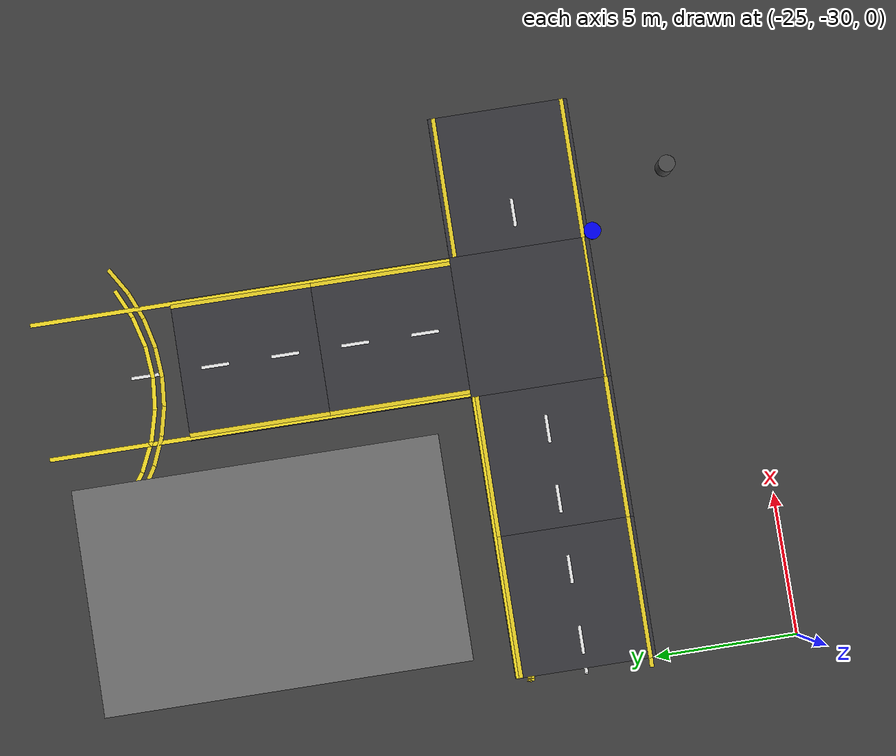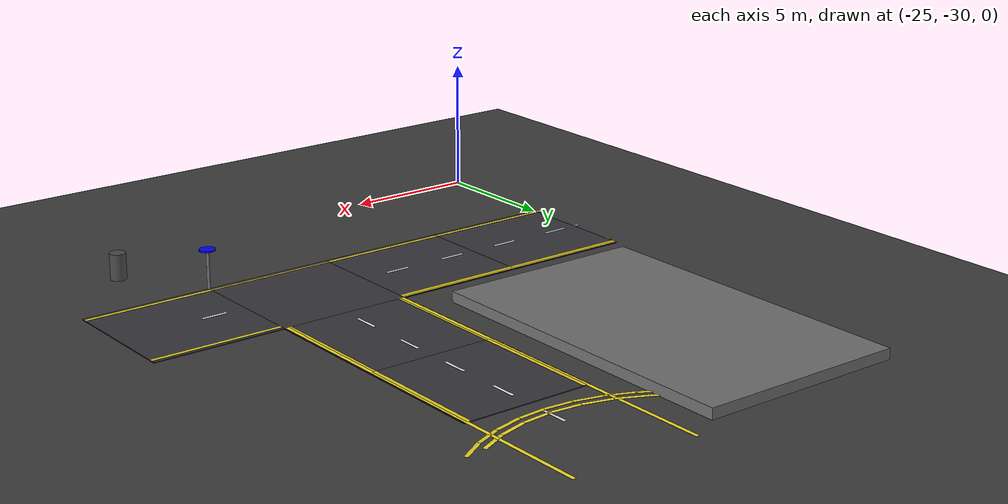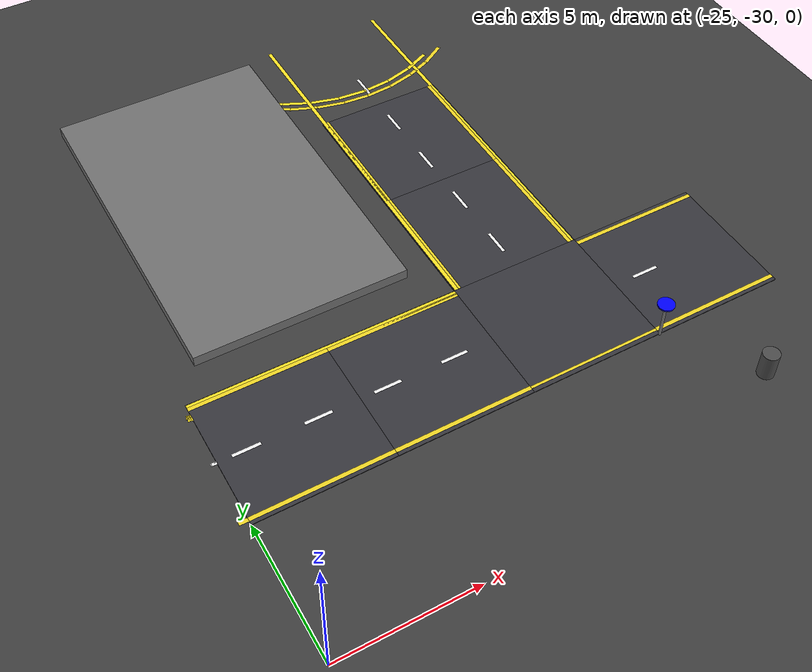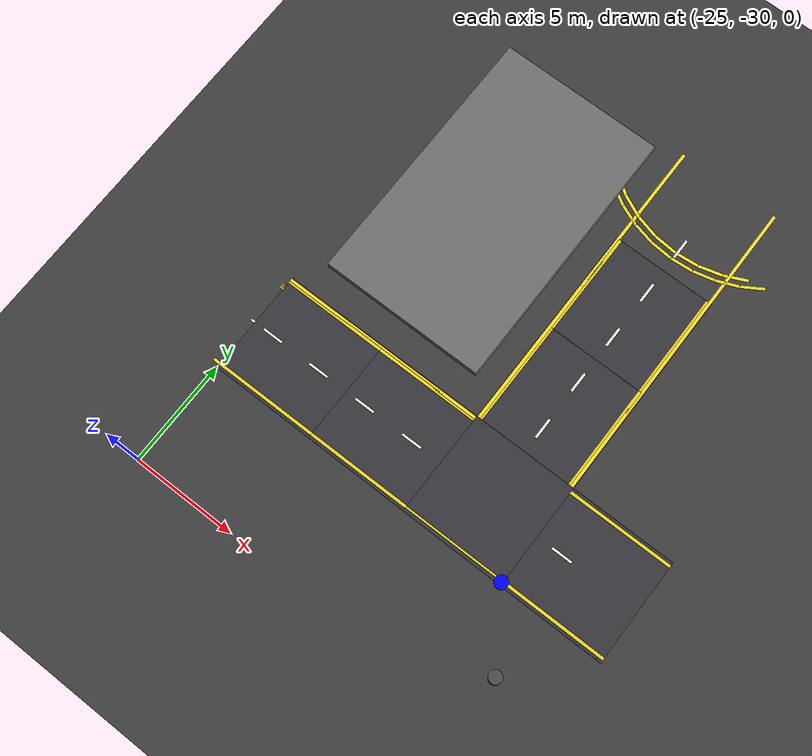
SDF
<sdf version="1.7">
 <world name="compact_city">
  <model name="ground_plane">
   <static>1</static>
   <pose>0 0 0.01 0 -0 0</pose>
   <link name="link">
    <collision name="collision">
     <geometry><plane><normal>0 0 1</normal><size>200 200</size></plane></geometry>
    </collision>
    <visual name="visual">
     <geometry><plane><normal>0 0 1</normal><size>200 200</size></plane></geometry>
     <material>
      <ambient>0.2 0.2 0.2 1</ambient>
      <diffuse>0.25 0.25 0.25 1</diffuse>
      <specular>0.1 0.1 0.1 1</specular>
     </material>
    </visual>
   </link>
  </model>
  <model name="road_tile_61">
   <static>1</static>
   <pose>-12.5 -12.5 0.015 0 -0 1.5708</pose>
   <link name="link">
    <collision name="collision"><geometry><box><size>5 5 0.03</size></box></geometry></collision>
    <visual name="visual">
     <geometry><box><size>5 5 0.03</size></box></geometry>
     <material>
      <ambient>0.18 0.18 0.2 1</ambient>
      <diffuse>0.22 0.22 0.24 1</diffuse>
      <specular>0.1 0.1 0.1 1</specular>
     </material>
    </visual>
   </link>
  </model>
  <model name="road_tile_65">
   <static>1</static>
   <pose>-12.5 -17.5 0.015 0 -0 1.5708</pose>
   <link name="link">
    <collision name="collision"><geometry><box><size>5 5 0.03</size></box></geometry></collision>
    <visual name="visual">
     <geometry><box><size>5 5 0.03</size></box></geometry>
     <material>
      <ambient>0.18 0.18 0.2 1</ambient>
      <diffuse>0.22 0.22 0.24 1</diffuse>
      <specular>0.1 0.1 0.1 1</specular>
     </material>
    </visual>
   </link>
  </model>
  <model name="road_tile_69">
   <static>1</static>
   <pose>-22.5 -22.5 0.015 0 -0 0</pose>
   <link name="link">
    <collision name="collision"><geometry><box><size>5 5 0.03</size></box></geometry></collision>
    <visual name="visual">
     <geometry><box><size>5 5 0.03</size></box></geometry>
     <material>
      <ambient>0.18 0.18 0.2 1</ambient>
      <diffuse>0.22 0.22 0.24 1</diffuse>
      <specular>0.1 0.1 0.1 1</specular>
     </material>
    </visual>
   </link>
  </model>
  <model name="road_tile_70">
   <static>1</static>
   <pose>-17.5 -22.5 0.015 0 -0 0</pose>
   <link name="link">
    <collision name="collision"><geometry><box><size>5 5 0.03</size></box></geometry></collision>
    <visual name="visual">
     <geometry><box><size>5 5 0.03</size></box></geometry>
     <material>
      <ambient>0.18 0.18 0.2 1</ambient>
      <diffuse>0.22 0.22 0.24 1</diffuse>
      <specular>0.1 0.1 0.1 1</specular>
     </material>
    </visual>
   </link>
  </model>
  <model name="road_tile_71">
   <static>1</static>
   <pose>-12.5 -22.5 0.015 0 -0 0</pose>
   <link name="link">
    <collision name="collision"><geometry><box><size>5 5 0.03</size></box></geometry></collision>
    <visual name="visual">
     <geometry><box><size>5 5 0.03</size></box></geometry>
     <material>
      <ambient>0.18 0.18 0.2 1</ambient>
      <diffuse>0.22 0.22 0.24 1</diffuse>
      <specular>0.1 0.1 0.1 1</specular>
     </material>
    </visual>
   </link>
  </model>
  <model name="road_tile_72">
   <static>1</static>
   <pose>-7.5 -22.5 0.015 0 -0 0</pose>
   <link name="link">
    <collision name="collision"><geometry><box><size>5 5 0.03</size></box></geometry></collision>
    <visual name="visual">
     <geometry><box><size>5 5 0.03</size></box></geometry>
     <material>
      <ambient>0.18 0.18 0.2 1</ambient>
      <diffuse>0.22 0.22 0.24 1</diffuse>
      <specular>0.1 0.1 0.1 1</specular>
     </material>
    </visual>
   </link>
  </model>
  <model name="sidewalk_area_bot_left">
   <static>1</static>
   <pose>-20.1013 -12.1455 0.2 0 -0 0</pose>
   <link name="link">
    <collision name="collision"><geometry><box><size>8 13 0.4</size></box></geometry></collision>
    <visual name="visual">
     <geometry><box><size>8 13 0.4</size></box></geometry>
     <material>
      <ambient>0.4 0.4 0.4 1</ambient>
      <diffuse>0.45 0.45 0.45 1</diffuse>
      <specular>0.2 0.2 0.2 1</specular>
     </material>
    </visual>
   </link>
  </model>
  <model name="el_147">
   <static>1</static>
   <pose>-22.5 -24.8 0.038 0 -0 0</pose>
   <link name="link">
    <visual name="v">
     <geometry><box><size>5 0.15 0.002</size></box></geometry>
     <material><ambient>0.9 0.8 0.1 1</ambient><diffuse>0.95 0.85 0.15 1</diffuse></material>
    </visual>
   </link>
  </model>
  <model name="el_148">
   <static>1</static>
   <pose>-22.5 -20.2 0.038 0 -0 0</pose>
   <link name="link">
    <visual name="v">
     <geometry><box><size>5 0.15 0.002</size></box></geometry>
     <material><ambient>0.9 0.8 0.1 1</ambient><diffuse>0.95 0.85 0.15 1</diffuse></material>
    </visual>
   </link>
  </model>
  <model name="el_155">
   <static>1</static>
   <pose>-17.5 -24.8 0.038 0 -0 0</pose>
   <link name="link">
    <visual name="v">
     <geometry><box><size>5 0.15 0.002</size></box></geometry>
     <material><ambient>0.9 0.8 0.1 1</ambient><diffuse>0.95 0.85 0.15 1</diffuse></material>
    </visual>
   </link>
  </model>
  <model name="el_156">
   <static>1</static>
   <pose>-17.5 -20.2 0.038 0 -0 0</pose>
   <link name="link">
    <visual name="v">
     <geometry><box><size>5 0.15 0.002</size></box></geometry>
     <material><ambient>0.9 0.8 0.1 1</ambient><diffuse>0.95 0.85 0.15 1</diffuse></material>
    </visual>
   </link>
  </model>
  <model name="el_163">
   <static>1</static>
   <pose>-14.8 -17.5 0.038 0 -0 1.5708</pose>
   <link name="link">
    <visual name="v">
     <geometry><box><size>5 0.15 0.002</size></box></geometry>
     <material><ambient>0.9 0.8 0.1 1</ambient><diffuse>0.95 0.85 0.15 1</diffuse></material>
    </visual>
   </link>
  </model>
  <model name="el_164">
   <static>1</static>
   <pose>-10.2 -17.5 0.038 0 -0 1.5708</pose>
   <link name="link">
    <visual name="v">
     <geometry><box><size>5 0.15 0.002</size></box></geometry>
     <material><ambient>0.9 0.8 0.1 1</ambient><diffuse>0.95 0.85 0.15 1</diffuse></material>
    </visual>
   </link>
  </model>
  <model name="el_165">
   <static>1</static>
   <pose>-14.8 -12.5 0.038 0 -0 1.5708</pose>
   <link name="link">
    <visual name="v">
     <geometry><box><size>5 0.15 0.002</size></box></geometry>
     <material><ambient>0.9 0.8 0.1 1</ambient><diffuse>0.95 0.85 0.15 1</diffuse></material>
    </visual>
   </link>
  </model>
  <model name="el_166">
   <static>1</static>
   <pose>-10.2 -12.5 0.038 0 -0 1.5708</pose>
   <link name="link">
    <visual name="v">
     <geometry><box><size>5 0.15 0.002</size></box></geometry>
     <material><ambient>0.9 0.8 0.1 1</ambient><diffuse>0.95 0.85 0.15 1</diffuse></material>
    </visual>
   </link>
  </model>
  <model name="el_179">
   <static>1</static>
   <pose>-7.5 -24.8 0.038 0 -0 0</pose>
   <link name="link">
    <visual name="v">
     <geometry><box><size>5 0.15 0.002</size></box></geometry>
     <material><ambient>0.9 0.8 0.1 1</ambient><diffuse>0.95 0.85 0.15 1</diffuse></material>
    </visual>
   </link>
  </model>
  <model name="el_180">
   <static>1</static>
   <pose>-7.5 -20.2 0.038 0 -0 0</pose>
   <link name="link">
    <visual name="v">
     <geometry><box><size>5 0.15 0.002</size></box></geometry>
     <material><ambient>0.9 0.8 0.1 1</ambient><diffuse>0.95 0.85 0.15 1</diffuse></material>
    </visual>
   </link>
  </model>
  <model name="ld_17">
   <static>1</static>
   <pose>-12.5000 -18.7500 0.038 0 -0 1.5708</pose>
   <link name="link">
    <visual name="v">
     <geometry><box><size>1 0.12 0.002</size></box></geometry>
     <material><ambient>1 1 1 1</ambient><diffuse>0.95 0.95 0.95 1</diffuse></material>
    </visual>
   </link>
  </model>
  <model name="ld_18">
   <static>1</static>
   <pose>-12.5000 -16.2500 0.038 0 -0 1.5708</pose>
   <link name="link">
    <visual name="v">
     <geometry><box><size>1 0.12 0.002</size></box></geometry>
     <material><ambient>1 1 1 1</ambient><diffuse>0.95 0.95 0.95 1</diffuse></material>
    </visual>
   </link>
  </model>
  <model name="ld_19">
   <static>1</static>
   <pose>-12.5000 -13.7500 0.038 0 -0 1.5708</pose>
   <link name="link">
    <visual name="v">
     <geometry><box><size>1 0.12 0.002</size></box></geometry>
     <material><ambient>1 1 1 1</ambient><diffuse>0.95 0.95 0.95 1</diffuse></material>
    </visual>
   </link>
  </model>
  <model name="ld_20">
   <static>1</static>
   <pose>-12.5000 -11.2500 0.038 0 -0 1.5708</pose>
   <link name="link">
    <visual name="v">
     <geometry><box><size>1 0.12 0.002</size></box></geometry>
     <material><ambient>1 1 1 1</ambient><diffuse>0.95 0.95 0.95 1</diffuse></material>
    </visual>
   </link>
  </model>
  <model name="ld_21">
   <static>1</static>
   <pose>-12.5000 -8.7500 0.038 0 -0 1.5708</pose>
   <link name="link">
    <visual name="v">
     <geometry><box><size>1 0.12 0.002</size></box></geometry>
     <material><ambient>1 1 1 1</ambient><diffuse>0.95 0.95 0.95 1</diffuse></material>
    </visual>
   </link>
  </model>
  <model name="ld_117">
   <static>1</static>
   <pose>-24.0000 -22.5000 0.038 0 0 0</pose>
   <link name="link">
    <visual name="v">
     <geometry><box><size>1 0.12 0.002</size></box></geometry>
     <material><ambient>1 1 1 1</ambient><diffuse>0.95 0.95 0.95 1</diffuse></material>
    </visual>
   </link>
  </model>
  <model name="ld_118">
   <static>1</static>
   <pose>-21.5000 -22.5000 0.038 0 0 0</pose>
   <link name="link">
    <visual name="v">
     <geometry><box><size>1 0.12 0.002</size></box></geometry>
     <material><ambient>1 1 1 1</ambient><diffuse>0.95 0.95 0.95 1</diffuse></material>
    </visual>
   </link>
  </model>
  <model name="ld_119">
   <static>1</static>
   <pose>-19.0000 -22.5000 0.038 0 0 0</pose>
   <link name="link">
    <visual name="v">
     <geometry><box><size>1 0.12 0.002</size></box></geometry>
     <material><ambient>1 1 1 1</ambient><diffuse>0.95 0.95 0.95 1</diffuse></material>
    </visual>
   </link>
  </model>
  <model name="ld_120">
   <static>1</static>
   <pose>-16.5000 -22.5000 0.038 0 0 0</pose>
   <link name="link">
    <visual name="v">
     <geometry><box><size>1 0.12 0.002</size></box></geometry>
     <material><ambient>1 1 1 1</ambient><diffuse>0.95 0.95 0.95 1</diffuse></material>
    </visual>
   </link>
  </model>
  <model name="ld_121">
   <static>1</static>
   <pose>-8.7500 -22.5000 0.038 0 0 0</pose>
   <link name="link">
    <visual name="v">
     <geometry><box><size>1 0.12 0.002</size></box></geometry>
     <material><ambient>1 1 1 1</ambient><diffuse>0.95 0.95 0.95 1</diffuse></material>
    </visual>
   </link>
  </model>
  <model name="ie_283">
   <static>1</static>
   <pose>-12.5 -24.8 0.038 0 -0 0</pose>
   <link name="link">
    <visual name="v">
     <geometry><box><size>5 0.1 0.002</size></box></geometry>
     <material><ambient>0.9 0.8 0.1 1</ambient><diffuse>0.95 0.85 0.15 1</diffuse></material>
    </visual>
   </link>
  </model>
  <model name="ac_521">
   <static>1</static>
   <pose>-25.0818 -22.4987 0.038 0 0 -0.032685</pose>
   <link name="link">
    <visual name="v">
     <geometry><box><size>0.173411 0.12 0.002</size></box></geometry>
     <material><ambient>1 1 1 1</ambient><diffuse>0.95 0.95 0.95 1</diffuse></material>
    </visual>
   </link>
  </model>
  <model name="ai_541">
   <static>1</static>
   <pose>-25.1451 -20.4785 0.038 0 0 -0.294485</pose>
   <link name="link">
    <visual name="v">
     <geometry><box><size>0.04 0.15 0.002</size></box></geometry>
     <material><ambient>0.9 0.8 0.1 1</ambient><diffuse>0.95 0.85 0.15 1</diffuse></material>
    </visual>
   </link>
  </model>
  <model name="ai_542">
   <static>1</static>
   <pose>-25.1135 -20.4869 0.038 0 0 -0.229085</pose>
   <link name="link">
    <visual name="v">
     <geometry><box><size>0.04 0.15 0.002</size></box></geometry>
     <material><ambient>0.9 0.8 0.1 1</ambient><diffuse>0.95 0.85 0.15 1</diffuse></material>
    </visual>
   </link>
  </model>
  <model name="ai_543">
   <static>1</static>
   <pose>-25.0814 -20.4933 0.038 0 0 -0.163585</pose>
   <link name="link">
    <visual name="v">
     <geometry><box><size>0.04 0.15 0.002</size></box></geometry>
     <material><ambient>0.9 0.8 0.1 1</ambient><diffuse>0.95 0.85 0.15 1</diffuse></material>
    </visual>
   </link>
  </model>
  <model name="ai_544">
   <static>1</static>
   <pose>-25.049 -20.4976 0.038 0 0 -0.098185</pose>
   <link name="link">
    <visual name="v">
     <geometry><box><size>0.04 0.15 0.002</size></box></geometry>
     <material><ambient>0.9 0.8 0.1 1</ambient><diffuse>0.95 0.85 0.15 1</diffuse></material>
    </visual>
   </link>
  </model>
  <model name="ai_545">
   <static>1</static>
   <pose>-25.0164 -20.4997 0.038 0 0 -0.032685</pose>
   <link name="link">
    <visual name="v">
     <geometry><box><size>0.04 0.15 0.002</size></box></geometry>
     <material><ambient>0.9 0.8 0.1 1</ambient><diffuse>0.95 0.85 0.15 1</diffuse></material>
    </visual>
   </link>
  </model>
  <model name="ao_569">
   <static>1</static>
   <pose>-25.1571 -24.7974 0.038 0 0 -0.032685</pose>
   <link name="link">
    <visual name="v">
     <geometry><box><size>0.329808 0.15 0.002</size></box></geometry>
     <material><ambient>0.9 0.8 0.1 1</ambient><diffuse>0.95 0.85 0.15 1</diffuse></material>
    </visual>
   </link>
  </model>
  <model name="ro_700">
   <static>1</static>
   <pose>-16.143 -8.318 0.038 0 0 -0.549785</pose>
   <link name="link">
    <visual name="v">
     <geometry><box><size>1.1204 0.15 0.002</size></box></geometry>
     <material><ambient>0.9 0.8 0.1 1</ambient><diffuse>0.95 0.85 0.15 1</diffuse></material>
    </visual>
   </link>
  </model>
  <model name="ro_701">
   <static>1</static>
   <pose>-15.1922 -8.8024 0.038 0 0 -0.392685</pose>
   <link name="link">
    <visual name="v">
     <geometry><box><size>1.1204 0.15 0.002</size></box></geometry>
     <material><ambient>0.9 0.8 0.1 1</ambient><diffuse>0.95 0.85 0.15 1</diffuse></material>
    </visual>
   </link>
  </model>
  <model name="ro_702">
   <static>1</static>
   <pose>-14.1774 -9.1321 0.038 0 0 -0.235585</pose>
   <link name="link">
    <visual name="v">
     <geometry><box><size>1.1204 0.15 0.002</size></box></geometry>
     <material><ambient>0.9 0.8 0.1 1</ambient><diffuse>0.95 0.85 0.15 1</diffuse></material>
    </visual>
   </link>
  </model>
  <model name="ro_703">
   <static>1</static>
   <pose>-13.1235 -9.299 0.038 0 0 -0.078585</pose>
   <link name="link">
    <visual name="v">
     <geometry><box><size>1.1204 0.15 0.002</size></box></geometry>
     <material><ambient>0.9 0.8 0.1 1</ambient><diffuse>0.95 0.85 0.15 1</diffuse></material>
    </visual>
   </link>
  </model>
  <model name="ro_704">
   <static>1</static>
   <pose>-12.0565 -9.299 0.038 0 -0 0.078515</pose>
   <link name="link">
    <visual name="v">
     <geometry><box><size>1.1204 0.15 0.002</size></box></geometry>
     <material><ambient>0.9 0.8 0.1 1</ambient><diffuse>0.95 0.85 0.15 1</diffuse></material>
    </visual>
   </link>
  </model>
  <model name="ro_705">
   <static>1</static>
   <pose>-11.0026 -9.1321 0.038 0 -0 0.235615</pose>
   <link name="link">
    <visual name="v">
     <geometry><box><size>1.1204 0.15 0.002</size></box></geometry>
     <material><ambient>0.9 0.8 0.1 1</ambient><diffuse>0.95 0.85 0.15 1</diffuse></material>
    </visual>
   </link>
  </model>
  <model name="ro_706">
   <static>1</static>
   <pose>-9.9878 -8.8024 0.038 0 -0 0.392715</pose>
   <link name="link">
    <visual name="v">
     <geometry><box><size>1.1204 0.15 0.002</size></box></geometry>
     <material><ambient>0.9 0.8 0.1 1</ambient><diffuse>0.95 0.85 0.15 1</diffuse></material>
    </visual>
   </link>
  </model>
  <model name="ro_707">
   <static>1</static>
   <pose>-9.037 -8.318 0.038 0 -0 0.549815</pose>
   <link name="link">
    <visual name="v">
     <geometry><box><size>1.1204 0.15 0.002</size></box></geometry>
     <material><ambient>0.9 0.8 0.1 1</ambient><diffuse>0.95 0.85 0.15 1</diffuse></material>
    </visual>
   </link>
  </model>
  <model name="traffic_sign_3">
   <static>1</static>
   <pose>-10 -25 1.5 0 -0 1.57</pose>
   <link name="link">
    <collision name="collision">
     <geometry><cylinder><radius>0.3</radius><length>0.05</length></cylinder></geometry>
    </collision>
    <visual name="visual">
     <geometry><cylinder><radius>0.3</radius><length>0.05</length></cylinder></geometry>
     <material><ambient>0 0 1 1</ambient><diffuse>0 0 1 1</diffuse></material>
    </visual>
    <collision name="pole_col">
     <pose>0 0 -0.75 0 -0 0</pose>
     <geometry><cylinder><radius>0.05</radius><length>1.5</length></cylinder></geometry>
    </collision>
    <visual name="pole">
     <pose>0 0 -0.75 0 -0 0</pose>
     <geometry><cylinder><radius>0.05</radius><length>1.5</length></cylinder></geometry>
     <material><ambient>0.5 0.5 0.5 1</ambient><diffuse>0.5 0.5 0.5 1</diffuse></material>
    </visual>
   </link>
  </model>
  <model name="bin_3">
   <static>1</static>
   <pose>-8 -28 0.5 0 -0 0</pose>
   <link name="link">
    <collision name="collision">
     <geometry><cylinder><radius>0.3</radius><length>1</length></cylinder></geometry>
    </collision>
    <visual name="visual">
     <geometry><cylinder><radius>0.3</radius><length>1</length></cylinder></geometry>
     <material><ambient>0.2 0.2 0.2 1</ambient><diffuse>0.3 0.3 0.3 1</diffuse></material>
    </visual>
   </link>
  </model>
  <model name="edge_h_20">
   <static>1</static>
   <pose>-20 -20.1 0.038 0 -0 0</pose>
   <link name="link">
    <visual name="visual">
     <geometry><box><size>10 0.15 0.002</size></box></geometry>
     <material><ambient>0.95 0.85 0.1 1</ambient><diffuse>1 0.9 0.15 1</diffuse></material>
    </visual>
   </link>
  </model>
  <model name="edge_v_29">
   <static>1</static>
   <pose>-14.9 -12.5 0.038 0 -0 1.5708</pose>
   <link name="link">
    <visual name="visual">
     <geometry><box><size>15 0.15 0.002</size></box></geometry>
     <material><ambient>0.95 0.85 0.1 1</ambient><diffuse>1 0.9 0.15 1</diffuse></material>
    </visual>
   </link>
  </model>
  <model name="edge_v_30">
   <static>1</static>
   <pose>-10.1 -12.5 0.038 0 -0 1.5708</pose>
   <link name="link">
    <visual name="visual">
     <geometry><box><size>15 0.15 0.002</size></box></geometry>
     <material><ambient>0.95 0.85 0.1 1</ambient><diffuse>1 0.9 0.15 1</diffuse></material>
    </visual>
   </link>
  </model>
  <model name="arc_c_344">
   <static>1</static>
   <pose>-25.0981 -22.4961 0.038 0 0 -0.0393</pose>
   <link name="link">
    <visual name="visual">
     <geometry><box><size>0.216299 0.12 0.002</size></box></geometry>
     <material><ambient>1 1 1 1</ambient><diffuse>0.95 0.95 0.95 1</diffuse></material>
    </visual>
   </link>
  </model>
  <model name="arc_in_362">
   <static>1</static>
   <pose>-25.117 -20.588 0.038 0 0 -0.1963</pose>
   <link name="link">
    <visual name="visual">
     <geometry><box><size>0.067112 0.15 0.002</size></box></geometry>
     <material><ambient>0.95 0.85 0.1 1</ambient><diffuse>1 0.9 0.15 1</diffuse></material>
    </visual>
   </link>
  </model>
  <model name="arc_in_363">
   <static>1</static>
   <pose>-25.0705 -20.5954 0.038 0 0 -0.1178</pose>
   <link name="link">
    <visual name="visual">
     <geometry><box><size>0.067112 0.15 0.002</size></box></geometry>
     <material><ambient>0.95 0.85 0.1 1</ambient><diffuse>1 0.9 0.15 1</diffuse></material>
    </visual>
   </link>
  </model>
  <model name="arc_in_364">
   <static>1</static>
   <pose>-25.0235 -20.5991 0.038 0 0 -0.0393</pose>
   <link name="link">
    <visual name="visual">
     <geometry><box><size>0.067112 0.15 0.002</size></box></geometry>
     <material><ambient>0.95 0.85 0.1 1</ambient><diffuse>1 0.9 0.15 1</diffuse></material>
    </visual>
   </link>
  </model>
  <model name="ra_outer_560">
   <static>1</static>
   <pose>-16.3041 -7.8242 0.038 0 0 -0.6109</pose>
   <link name="link">
    <visual name="visual">
     <geometry><box><size>1.15302 0.15 0.002</size></box></geometry>
     <material><ambient>0.95 0.85 0.1 1</ambient><diffuse>1 0.9 0.15 1</diffuse></material>
    </visual>
   </link>
  </model>
  <model name="ra_outer_561">
   <static>1</static>
   <pose>-15.3266 -8.3886 0.038 0 0 -0.4363</pose>
   <link name="link">
    <visual name="visual">
     <geometry><box><size>1.15302 0.15 0.002</size></box></geometry>
     <material><ambient>0.95 0.85 0.1 1</ambient><diffuse>1 0.9 0.15 1</diffuse></material>
    </visual>
   </link>
  </model>
  <model name="ra_outer_562">
   <static>1</static>
   <pose>-14.2659 -8.7746 0.038 0 0 -0.2618</pose>
   <link name="link">
    <visual name="visual">
     <geometry><box><size>1.15302 0.15 0.002</size></box></geometry>
     <material><ambient>0.95 0.85 0.1 1</ambient><diffuse>1 0.9 0.15 1</diffuse></material>
    </visual>
   </link>
  </model>
  <model name="ra_outer_563">
   <static>1</static>
   <pose>-13.1544 -8.9706 0.038 0 0 -0.0873</pose>
   <link name="link">
    <visual name="visual">
     <geometry><box><size>1.15302 0.15 0.002</size></box></geometry>
     <material><ambient>0.95 0.85 0.1 1</ambient><diffuse>1 0.9 0.15 1</diffuse></material>
    </visual>
   </link>
  </model>
  <model name="ra_outer_564">
   <static>1</static>
   <pose>-12.0256 -8.9706 0.038 0 -0 0.0873</pose>
   <link name="link">
    <visual name="visual">
     <geometry><box><size>1.15302 0.15 0.002</size></box></geometry>
     <material><ambient>0.95 0.85 0.1 1</ambient><diffuse>1 0.9 0.15 1</diffuse></material>
    </visual>
   </link>
  </model>
  <model name="ra_outer_565">
   <static>1</static>
   <pose>-10.9141 -8.7746 0.038 0 -0 0.2618</pose>
   <link name="link">
    <visual name="visual">
     <geometry><box><size>1.15302 0.15 0.002</size></box></geometry>
     <material><ambient>0.95 0.85 0.1 1</ambient><diffuse>1 0.9 0.15 1</diffuse></material>
    </visual>
   </link>
  </model>
  <model name="ra_outer_566">
   <static>1</static>
   <pose>-9.8534 -8.3886 0.038 0 -0 0.4363</pose>
   <link name="link">
    <visual name="visual">
     <geometry><box><size>1.15302 0.15 0.002</size></box></geometry>
     <material><ambient>0.95 0.85 0.1 1</ambient><diffuse>1 0.9 0.15 1</diffuse></material>
    </visual>
   </link>
  </model>
 </world>
</sdf>
